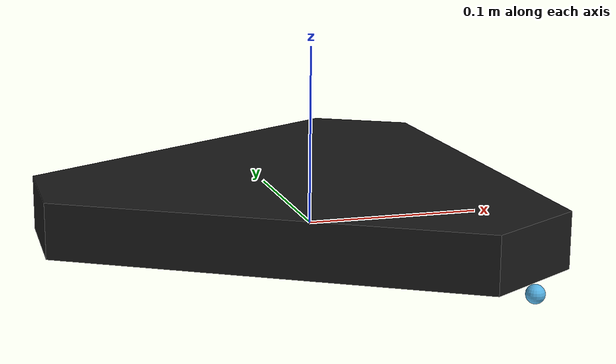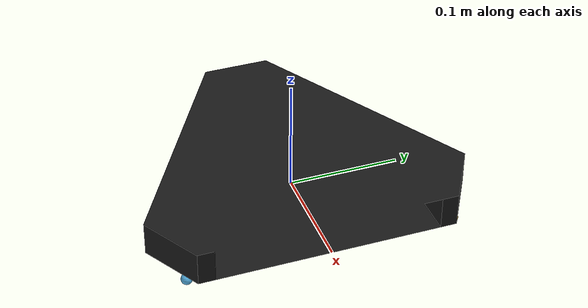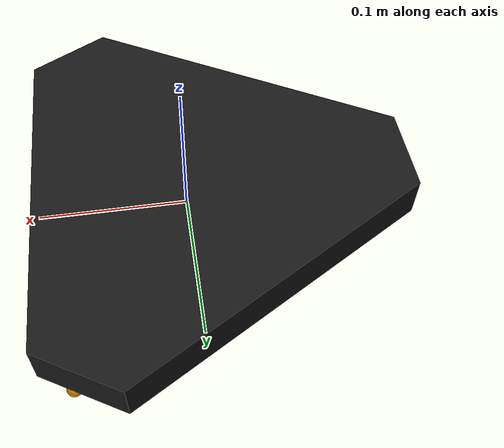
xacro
<?xml version="1.0"?>
<robot xmlns:xacro="http://www.ros.org/wiki/xacro" >

      <gazebo>

        <plugin name="gz::sim::systems::VelocityControl" filename="gz-sim-velocity-control-system">
        </plugin>

    </gazebo>

    <link name="caster_1">
        <collision>
            <geometry>
                <sphere radius="0.005" />
            </geometry>
            <surface>
                <friction>
                    <ode>
                    <mu>0.00001</mu>
                    <mu2>0.00001</mu2>
                    </ode>
                </friction>
             </surface>
        </collision>
        <visual>
            <geometry>
            <sphere radius="0.005" />
            </geometry>
        </visual>
    </link>

    <joint name="caster_1_joint" type="fixed">
        <parent link="base_link"/>
        <child link="caster_1"/>
        <origin xyz="0.08 0.12 -0.01"/>
    </joint>

    <link name="caster_2">
        <collision>
            <geometry>
                <sphere radius="0.005" />
            </geometry>
            <surface>
                <friction>
                    <ode>
                    <mu>0.00001</mu>
                    <mu2>0.00001</mu2>
                    </ode>
                </friction>
             </surface>
        </collision>
        <visual>
            <geometry>
            <sphere radius="0.005" />
            </geometry>
        </visual>
    </link>

    <joint name="caster_2_joint" type="fixed">
        <parent link="base_link"/>
        <child link="caster_2"/>
        <origin xyz="0.08 -0.12 -0.01"/>
    </joint>

   <link name="caster_3">
        <collision>
            <geometry>
                <sphere radius="0.005" />
            </geometry>
            <surface>
                <friction>
                    <ode>
                    <mu>0.00001</mu>
                    <mu2>0.00001</mu2>
                    </ode>
                </friction>
             </surface>
        </collision>
        <visual>
            <geometry>
            <sphere radius="0.005" />
            </geometry>
        </visual>
    </link>

    <joint name="caster_3_joint" type="fixed">
        <parent link="base_link"/>
        <child link="caster_3"/>
        <origin xyz="-0.1 0.0 -0.01"/>
    </joint>
    <material name="white">
        <color rgba="1 1 1 1" />
    </material>

    <xacro:include filename="inertial_macros.xacro"/>

    <link name="base_link"></link>

    <joint name="body_joint" type="fixed">
        <parent link="base_link"/>
        <child link="body"/>
        <origin xyz="0 0 0"/>
    </joint>

    <link name="base_footprint"></link>

    <joint name="base_footprint_joint" type="fixed">
        <parent link="base_link"/>
        <child link="base_footprint"/>
        <origin xyz="0 0 0"/>
    </joint>

    <link name="body">
        <visual>
            <origin xyz="0.1 -0.1759 0" rpy="1.57 0 1.57" />
            <geometry>
                <mesh scale="0.1 0.1 0.1" rpy="0 0 1.04" filename="file://$(find shesnar)/meshes/body2.obj"/>
            </geometry>
            <material name="">
                <color rgba="0.1 0.1 0.1 1" />
            </material>
        </visual>
        <collision>
            <origin xyz="0.1 -0.1759 0" rpy="1.57 0 1.57" />
            <geometry>
                 <mesh scale="0.1 0.1 0.1" rpy="0 0 1.04" filename="file://$(find shesnar)/meshes/body2.obj"/>

            </geometry>
        </collision>
        <xacro:inertial_cylinder mass="10.0" length="0.12" radius="0.15">
            <origin xyz="0 0 0" rpy="0 0 0"/>
        </xacro:inertial_cylinder>
    </link>

</robot>

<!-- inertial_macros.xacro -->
<robot xmlns:xacro="http://www.ros.org/wiki/xacro" >

    <!-- Specify some standard inertial calculations https://en.wikipedia.org/wiki/List_of_moments_of_inertia -->
    <!-- These make use of xacro's mathematical functionality -->

    <xacro:macro name="inertial_sphere" params="mass radius *origin">
        <inertial>
            <xacro:insert_block name="origin"/>
            <mass value="${mass}" />
            <inertia ixx="${(2/5) * mass * (radius*radius)}" ixy="0.0" ixz="0.0"
                    iyy="${(2/5) * mass * (radius*radius)}" iyz="0.0"
                    izz="${(2/5) * mass * (radius*radius)}" />
        </inertial>
    </xacro:macro>

    <xacro:macro name="inertial_box" params="mass x y z *origin">
        <inertial>
            <xacro:insert_block name="origin"/>
            <mass value="${mass}" />
            <inertia ixx="${(1/12) * mass * (y*y+z*z)}" ixy="0.0" ixz="0.0"
                    iyy="${(1/12) * mass * (x*x+z*z)}" iyz="0.0"
                    izz="${(1/12) * mass * (x*x+y*y)}" />
            </inertial>
    </xacro:macro>

    <xacro:macro name="inertial_cylinder" params="mass length radius *origin">
        <inertial>
            <xacro:insert_block name="origin"/>
            <mass value="${mass}" />
            <inertia ixx="${(1/12) * mass * (3*radius*radius + length*length)}" ixy="0.0" ixz="0.0"
                    iyy="${(1/12) * mass * (3*radius*radius + length*length)}" iyz="0.0"
                    izz="${(1/2) * mass * (radius*radius)}" />
        </inertial>
    </xacro:macro>

</robot>
